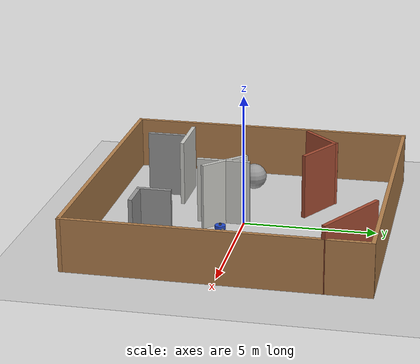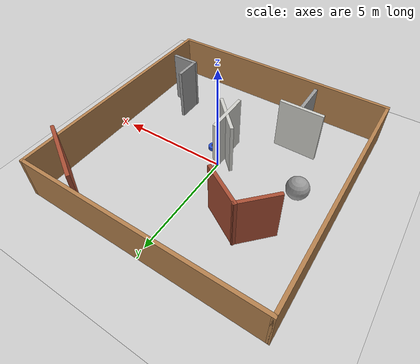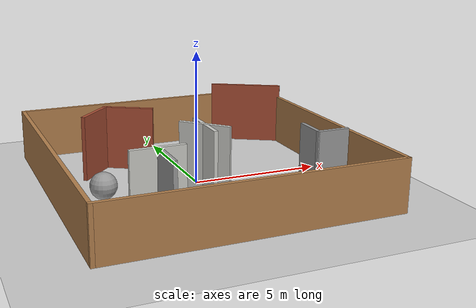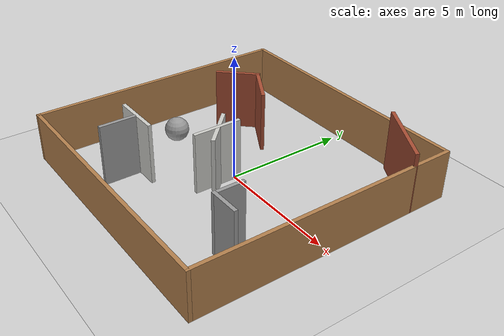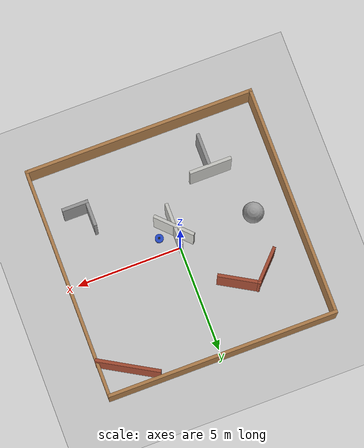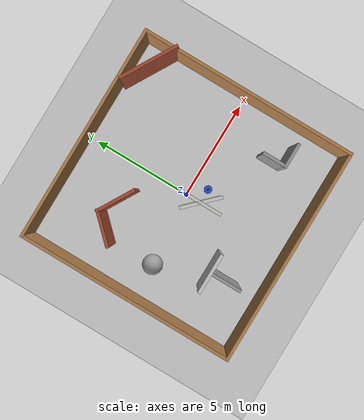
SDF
<sdf version="1.7">
 <world name="default">
  <light name="sun" type="directional">
   <pose>0 0 10 0 -0 0</pose>
   <diffuse>0.8 0.8 0.8 1</diffuse>
   <specular>0.1 0.1 0.1 1</specular>
   <attenuation>
    <range>1000</range>
    <constant>0.9</constant>
    <linear>0.01</linear>
    <quadratic>0.001</quadratic>
   </attenuation>
   <direction>-0.5 0.5 -1</direction>
   <spot><inner_angle>0</inner_angle><outer_angle>0</outer_angle><falloff>0</falloff></spot>
  </light>
  <model name="ground_plane">
   <static>1</static>
   <link name="link">
    <collision name="collision">
     <geometry><plane><normal>0 0 1</normal><size>100 100</size></plane></geometry>
     <surface><friction><ode><mu>100</mu><mu2>50</mu2></ode></friction></surface>
    </collision>
    <visual name="visual">
     <cast_shadows>0</cast_shadows>
     <geometry><plane><normal>0 0 1</normal><size>100 100</size></plane></geometry>
     <material>
      <script><uri>file://media/materials/scripts/gazebo.material</uri><name>Gazebo/Grey</name></script>
     </material>
    </visual>
   </link>
  </model>
  <gravity>0 0 -9.8</gravity>
  <magnetic_field>6e-06 2.3e-05 -4.2e-05</magnetic_field>
  <atmosphere type="adiabatic"/>
  <physics name="default_physics" default="0" type="ode">
   <max_step_size>0.001</max_step_size>
   <real_time_factor>1</real_time_factor>
   <real_time_update_rate>1000</real_time_update_rate>
  </physics>
  <scene><ambient>0.4 0.4 0.4 1</ambient><background>0.7 0.7 0.7 1</background><shadows>1</shadows></scene>
  <spherical_coordinates>
   <surface_model>EARTH_WGS84</surface_model>
   <latitude_deg>0</latitude_deg>
   <longitude_deg>0</longitude_deg>
   <elevation>0</elevation>
   <heading_deg>0</heading_deg>
  </spherical_coordinates>
  <model name="box">
   <link name="Wall_6">
    <pose>0 5.425 0 0 -0 0</pose>
    <visual name="Wall_6_Visual">
     <pose>0 0 1 0 -0 0</pose>
     <geometry><box><size>11 0.15 2</size></box></geometry>
     <material>
      <script><uri>file://media/materials/scripts/gazebo.material</uri><name>Gazebo/Wood</name></script>
      <ambient>1 1 1 1</ambient>
      <diffuse>1 1 1 1</diffuse>
      <specular>0.2 0.2 0.2 1</specular>
      <emissive>0 0 0 1</emissive>
      <shader type="pixel"/>
     </material>
     <meta><layer>0</layer></meta>
    </visual>
    <collision name="Wall_6_Collision">
     <pose>0 0 1 0 -0 0</pose>
     <geometry><box><size>11 0.15 2</size></box></geometry>
     <surface>
      <friction>
       <ode><mu>1</mu><mu2>1</mu2><fdir1>0 0 0</fdir1><slip1>0</slip1><slip2>0</slip2></ode>
       <torsional>
        <coefficient>1</coefficient>
        <patch_radius>0</patch_radius>
        <surface_radius>0</surface_radius>
        <use_patch_radius>1</use_patch_radius>
        <ode><slip>0</slip></ode>
       </torsional>
      </friction>
      <bounce><restitution_coefficient>0</restitution_coefficient><threshold>1e+06</threshold></bounce>
      <contact>
       <collide_without_contact>0</collide_without_contact>
       <collide_without_contact_bitmask>1</collide_without_contact_bitmask>
       <collide_bitmask>1</collide_bitmask>
       <ode>
        <soft_cfm>0</soft_cfm>
        <soft_erp>0.2</soft_erp>
        <kp>1e+13</kp>
        <kd>1</kd>
        <max_vel>0.01</max_vel>
        <min_depth>0</min_depth>
       </ode>
       <bullet>
        <split_impulse>1</split_impulse>
        <split_impulse_penetration_threshold>-0.01</split_impulse_penetration_threshold>
        <soft_cfm>0</soft_cfm>
        <soft_erp>0.2</soft_erp>
        <kp>1e+13</kp>
        <kd>1</kd>
       </bullet>
      </contact>
     </surface>
    </collision>
   </link>
   <link name="Wall_7">
    <pose>5.425 0 0 0 0 -1.5708</pose>
    <visual name="Wall_7_Visual">
     <pose>0 0 1 0 -0 0</pose>
     <geometry><box><size>11 0.15 2</size></box></geometry>
     <material>
      <script><uri>file://media/materials/scripts/gazebo.material</uri><name>Gazebo/Wood</name></script>
      <ambient>1 1 1 1</ambient>
      <diffuse>1 1 1 1</diffuse>
      <specular>0.2 0.2 0.2 1</specular>
      <emissive>0 0 0 1</emissive>
      <shader type="pixel"/>
     </material>
     <meta><layer>0</layer></meta>
    </visual>
    <collision name="Wall_7_Collision">
     <pose>0 0 1 0 -0 0</pose>
     <geometry><box><size>11 0.15 2</size></box></geometry>
     <surface>
      <friction>
       <ode><mu>1</mu><mu2>1</mu2><fdir1>0 0 0</fdir1><slip1>0</slip1><slip2>0</slip2></ode>
       <torsional>
        <coefficient>1</coefficient>
        <patch_radius>0</patch_radius>
        <surface_radius>0</surface_radius>
        <use_patch_radius>1</use_patch_radius>
        <ode><slip>0</slip></ode>
       </torsional>
      </friction>
      <bounce><restitution_coefficient>0</restitution_coefficient><threshold>1e+06</threshold></bounce>
      <contact>
       <collide_without_contact>0</collide_without_contact>
       <collide_without_contact_bitmask>1</collide_without_contact_bitmask>
       <collide_bitmask>1</collide_bitmask>
       <ode>
        <soft_cfm>0</soft_cfm>
        <soft_erp>0.2</soft_erp>
        <kp>1e+13</kp>
        <kd>1</kd>
        <max_vel>0.01</max_vel>
        <min_depth>0</min_depth>
       </ode>
       <bullet>
        <split_impulse>1</split_impulse>
        <split_impulse_penetration_threshold>-0.01</split_impulse_penetration_threshold>
        <soft_cfm>0</soft_cfm>
        <soft_erp>0.2</soft_erp>
        <kp>1e+13</kp>
        <kd>1</kd>
       </bullet>
      </contact>
     </surface>
    </collision>
   </link>
   <link name="Wall_8">
    <pose>0 -5.425 0 0 -0 3.14159</pose>
    <visual name="Wall_8_Visual">
     <pose>0 0 1 0 -0 0</pose>
     <geometry><box><size>11 0.15 2</size></box></geometry>
     <material>
      <script><uri>file://media/materials/scripts/gazebo.material</uri><name>Gazebo/Wood</name></script>
      <ambient>1 1 1 1</ambient>
      <diffuse>1 1 1 1</diffuse>
      <specular>0.2 0.2 0.2 1</specular>
      <emissive>0 0 0 1</emissive>
      <shader type="pixel"/>
     </material>
     <meta><layer>0</layer></meta>
    </visual>
    <collision name="Wall_8_Collision">
     <pose>0 0 1 0 -0 0</pose>
     <geometry><box><size>11 0.15 2</size></box></geometry>
     <surface>
      <friction>
       <ode><mu>1</mu><mu2>1</mu2><fdir1>0 0 0</fdir1><slip1>0</slip1><slip2>0</slip2></ode>
       <torsional>
        <coefficient>1</coefficient>
        <patch_radius>0</patch_radius>
        <surface_radius>0</surface_radius>
        <use_patch_radius>1</use_patch_radius>
        <ode><slip>0</slip></ode>
       </torsional>
      </friction>
      <bounce><restitution_coefficient>0</restitution_coefficient><threshold>1e+06</threshold></bounce>
      <contact>
       <collide_without_contact>0</collide_without_contact>
       <collide_without_contact_bitmask>1</collide_without_contact_bitmask>
       <collide_bitmask>1</collide_bitmask>
       <ode>
        <soft_cfm>0</soft_cfm>
        <soft_erp>0.2</soft_erp>
        <kp>1e+13</kp>
        <kd>1</kd>
        <max_vel>0.01</max_vel>
        <min_depth>0</min_depth>
       </ode>
       <bullet>
        <split_impulse>1</split_impulse>
        <split_impulse_penetration_threshold>-0.01</split_impulse_penetration_threshold>
        <soft_cfm>0</soft_cfm>
        <soft_erp>0.2</soft_erp>
        <kp>1e+13</kp>
        <kd>1</kd>
       </bullet>
      </contact>
     </surface>
    </collision>
   </link>
   <link name="Wall_9">
    <pose>-5.425 0 0 0 -0 1.5708</pose>
    <visual name="Wall_9_Visual">
     <pose>0 0 1 0 -0 0</pose>
     <geometry><box><size>11 0.15 2</size></box></geometry>
     <material>
      <script><uri>file://media/materials/scripts/gazebo.material</uri><name>Gazebo/Wood</name></script>
      <ambient>1 1 1 1</ambient>
      <diffuse>1 1 1 1</diffuse>
      <specular>0.2 0.2 0.2 1</specular>
      <emissive>0 0 0 1</emissive>
      <shader type="pixel"/>
     </material>
     <meta><layer>0</layer></meta>
    </visual>
    <collision name="Wall_9_Collision">
     <pose>0 0 1 0 -0 0</pose>
     <geometry><box><size>11 0.15 2</size></box></geometry>
     <surface>
      <friction>
       <ode><mu>1</mu><mu2>1</mu2><fdir1>0 0 0</fdir1><slip1>0</slip1><slip2>0</slip2></ode>
       <torsional>
        <coefficient>1</coefficient>
        <patch_radius>0</patch_radius>
        <surface_radius>0</surface_radius>
        <use_patch_radius>1</use_patch_radius>
        <ode><slip>0</slip></ode>
       </torsional>
      </friction>
      <bounce><restitution_coefficient>0</restitution_coefficient><threshold>1e+06</threshold></bounce>
      <contact>
       <collide_without_contact>0</collide_without_contact>
       <collide_without_contact_bitmask>1</collide_without_contact_bitmask>
       <collide_bitmask>1</collide_bitmask>
       <ode>
        <soft_cfm>0</soft_cfm>
        <soft_erp>0.2</soft_erp>
        <kp>1e+13</kp>
        <kd>1</kd>
        <max_vel>0.01</max_vel>
        <min_depth>0</min_depth>
       </ode>
       <bullet>
        <split_impulse>1</split_impulse>
        <split_impulse_penetration_threshold>-0.01</split_impulse_penetration_threshold>
        <soft_cfm>0</soft_cfm>
        <soft_erp>0.2</soft_erp>
        <kp>1e+13</kp>
        <kd>1</kd>
       </bullet>
      </contact>
     </surface>
    </collision>
   </link>
   <static>1</static>
   <pose>0.00056 -0.00012 0 0 -0 0</pose>
  </model>
  <model name="unit_sphere">
   <pose>-3.67776 -0.320638 0.5 0 -0 0</pose>
   <link name="link">
    <inertial>
     <mass>1</mass>
     <inertia><ixx>0.1</ixx><ixy>0</ixy><ixz>0</ixz><iyy>0.1</iyy><iyz>0</iyz><izz>0.1</izz></inertia>
    </inertial>
    <collision name="collision"><geometry><sphere><radius>0.5</radius></sphere></geometry></collision>
    <visual name="visual">
     <geometry><sphere><radius>0.5</radius></sphere></geometry>
     <material>
      <script><name>Gazebo/Grey</name><uri>file://media/materials/scripts/gazebo.material</uri></script>
     </material>
    </visual>
   </link>
  </model>
  <model name="p3dx">
   <link name="base_footprint">
    <inertial>
     <pose>0 0 0.110522 0 -0 0</pose>
     <mass>20.1</mass>
     <inertia><ixx>0.253764</ixx><ixy>0</ixy><ixz>0</ixz><iyy>0.253764</iyy><iyz>0</iyz><izz>0.41</izz></inertia>
    </inertial>
    <collision name="base_footprint_fixed_joint_lump__base_link_collision">
     <pose>0 0 0.11 0 -0 0</pose>
     <geometry><cylinder><length>0.16</length><radius>0.2</radius></cylinder></geometry>
    </collision>
    <collision name="base_footprint_fixed_joint_lump__laser_link_collision_1">
     <pose>0 0 0.215 0 -0 0</pose>
     <geometry><cylinder><length>0.06</length><radius>0.05</radius></cylinder></geometry>
    </collision>
    <visual name="base_footprint_visual"><geometry><box><size>0.001 0.001 0.001</size></box></geometry></visual>
    <visual name="base_footprint_fixed_joint_lump__base_link_visual_1">
     <pose>0 0 0.11 0 -0 0</pose>
     <geometry><cylinder><length>0.16</length><radius>0.2</radius></cylinder></geometry>
     <material>
      <script><name>Gazebo/Blue</name><uri>file://media/materials/scripts/gazebo.material</uri></script>
     </material>
    </visual>
    <visual name="base_footprint_fixed_joint_lump__laser_link_visual_2">
     <pose>0 0 0.215 0 -0 0</pose>
     <geometry><cylinder><length>0.05</length><radius>0.05</radius></cylinder></geometry>
     <material>
      <script><name>Gazebo/Black</name><uri>file://media/materials/scripts/gazebo.material</uri></script>
     </material>
    </visual>
    <sensor name="rplidar" type="ray">
     <visualize>0</visualize>
     <update_rate>5.5</update_rate>
     <ray>
      <scan>
       <horizontal>
        <samples>360</samples>
        <resolution>1</resolution>
        <min_angle>-3.14</min_angle>
        <max_angle>3.14</max_angle>
       </horizontal>
       <vertical><samples>1</samples><min_angle>0</min_angle><max_angle>0</max_angle></vertical>
      </scan>
      <range><min>0.1</min><max>10</max><resolution>0.01</resolution></range>
      <noise><type>gaussian</type><mean>0</mean><stddev>0.01</stddev></noise>
     </ray>
     <plugin name="gazebo_rplidar" filename="libgazebo_ros_laser.so">
      <topicName>/scan</topicName>
      <frameName>laser_link</frameName>
      <robotNamespace>/</robotNamespace>
     </plugin>
     <pose>0 0 0.215 0 -0 0</pose>
    </sensor>
   </link>
   <joint name="back_caster_joint" type="revolute">
    <pose relative_to="base_footprint">0.18 0 0.015 0 -0 0</pose>
    <parent>base_footprint</parent>
    <child>back_caster_link</child>
    <axis>
     <xyz>0 1 0</xyz>
     <limit><lower>-1e+16</lower><upper>1e+16</upper></limit>
     <dynamics><spring_reference>0</spring_reference><spring_stiffness>0</spring_stiffness></dynamics>
    </axis>
   </joint>
   <link name="back_caster_link">
    <pose relative_to="back_caster_joint">0 0 0 0 -0 0</pose>
    <inertial>
     <mass>0.5</mass>
     <inertia><ixx>4.5e-05</ixx><ixy>0</ixy><ixz>0</ixz><iyy>4.5e-05</iyy><iyz>0</iyz><izz>4.5e-05</izz></inertia>
    </inertial>
    <collision name="back_caster_link_collision">
     <geometry><sphere><radius>0.015</radius></sphere></geometry>
    </collision>
    <visual name="back_caster_link_visual">
     <geometry><sphere><radius>0.015</radius></sphere></geometry>
     <material>
      <script><name>Gazebo/Black</name><uri>file://media/materials/scripts/gazebo.material</uri></script>
     </material>
    </visual>
   </link>
   <joint name="front_caster_joint" type="revolute">
    <pose relative_to="base_footprint">-0.18 0 0.015 0 -0 0</pose>
    <parent>base_footprint</parent>
    <child>front_caster_link</child>
    <axis>
     <xyz>0 1 0</xyz>
     <limit><lower>-1e+16</lower><upper>1e+16</upper></limit>
     <dynamics><spring_reference>0</spring_reference><spring_stiffness>0</spring_stiffness></dynamics>
    </axis>
   </joint>
   <link name="front_caster_link">
    <pose relative_to="front_caster_joint">0 0 0 0 -0 0</pose>
    <inertial>
     <mass>0.5</mass>
     <inertia><ixx>4.5e-05</ixx><ixy>0</ixy><ixz>0</ixz><iyy>4.5e-05</iyy><iyz>0</iyz><izz>4.5e-05</izz></inertia>
    </inertial>
    <collision name="front_caster_link_collision">
     <geometry><sphere><radius>0.015</radius></sphere></geometry>
    </collision>
    <visual name="front_caster_link_visual">
     <geometry><sphere><radius>0.015</radius></sphere></geometry>
     <material>
      <script><name>Gazebo/Black</name><uri>file://media/materials/scripts/gazebo.material</uri></script>
     </material>
    </visual>
   </link>
   <joint name="left_wheel_joint" type="revolute">
    <pose relative_to="base_footprint">0 0.19 0.06 0 -0 0</pose>
    <parent>base_footprint</parent>
    <child>left_wheel_link</child>
    <axis>
     <xyz>0 1 0</xyz>
     <limit><lower>-1e+16</lower><upper>1e+16</upper></limit>
     <dynamics><spring_reference>0</spring_reference><spring_stiffness>0</spring_stiffness></dynamics>
    </axis>
   </joint>
   <link name="left_wheel_link">
    <pose relative_to="left_wheel_joint">0 0 0 0 -0 0</pose>
    <inertial>
     <mass>2</mass>
     <inertia>
      <ixx>0.00190417</ixx>
      <ixy>0</ixy>
      <ixz>0</ixz>
      <iyy>0.00190417</iyy>
      <iyz>0</iyz>
      <izz>0.0036</izz>
     </inertia>
    </inertial>
    <collision name="left_wheel_link_collision">
     <pose>0 0 0 1.5708 -0 0</pose>
     <geometry><cylinder><length>0.025</length><radius>0.06</radius></cylinder></geometry>
    </collision>
    <visual name="left_wheel_link_visual">
     <pose>0 0 0 1.5708 -0 0</pose>
     <geometry><cylinder><length>0.025</length><radius>0.06</radius></cylinder></geometry>
     <material>
      <script><name>Gazebo/Gray</name><uri>file://media/materials/scripts/gazebo.material</uri></script>
     </material>
    </visual>
   </link>
   <joint name="right_wheel_joint" type="revolute">
    <pose relative_to="base_footprint">0 -0.19 0.06 0 -0 0</pose>
    <parent>base_footprint</parent>
    <child>right_wheel_link</child>
    <axis>
     <xyz>0 1 0</xyz>
     <limit><lower>-1e+16</lower><upper>1e+16</upper></limit>
     <dynamics><spring_reference>0</spring_reference><spring_stiffness>0</spring_stiffness></dynamics>
    </axis>
   </joint>
   <link name="right_wheel_link">
    <pose relative_to="right_wheel_joint">0 0 0 0 -0 0</pose>
    <inertial>
     <mass>2</mass>
     <inertia>
      <ixx>0.00190417</ixx>
      <ixy>0</ixy>
      <ixz>0</ixz>
      <iyy>0.00190417</iyy>
      <iyz>0</iyz>
      <izz>0.0036</izz>
     </inertia>
    </inertial>
    <collision name="right_wheel_link_collision">
     <pose>0 0 0 1.5708 -0 0</pose>
     <geometry><cylinder><length>0.025</length><radius>0.06</radius></cylinder></geometry>
    </collision>
    <visual name="right_wheel_link_visual">
     <pose>0 0 0 1.5708 -0 0</pose>
     <geometry><cylinder><length>0.025</length><radius>0.06</radius></cylinder></geometry>
     <material>
      <script><name>Gazebo/Gray</name><uri>file://media/materials/scripts/gazebo.material</uri></script>
     </material>
    </visual>
   </link>
   <static>0</static>
   <plugin name="differential_drive_controller" filename="libgazebo_ros_diff_drive.so">
    <rosDebugLevel>Debug</rosDebugLevel>
    <publishWheelTF>0</publishWheelTF>
    <robotNamespace>/</robotNamespace>
    <publishTf>1</publishTf>
    <publishWheelJointState>0</publishWheelJointState>
    <alwaysOn>1</alwaysOn>
    <updateRate>100.0</updateRate>
    <legacyMode>1</legacyMode>
    <leftJoint>left_wheel_joint</leftJoint>
    <rightJoint>right_wheel_joint</rightJoint>
    <wheelSeparation>0.38</wheelSeparation>
    <wheelDiameter>0.12</wheelDiameter>
    <broadcastTF>1</broadcastTF>
    <wheelTorque>30</wheelTorque>
    <wheelAcceleration>1.8</wheelAcceleration>
    <commandTopic>cmd_vel</commandTopic>
    <odometryFrame>odom</odometryFrame>
    <odometryTopic>odom</odometryTopic>
    <robotBaseFrame>base_footprint</robotBaseFrame>
   </plugin>
   <pose>0.761274 -0.755294 0 0 -0 2.24289</pose>
  </model>
  <model name="obstacle_walls">
   <link name="Wall_0">
    <pose>-3.18095 -3.29025 0 0 -0 3.14159</pose>
    <visual name="Wall_0_Visual">
     <pose>0 0 1.25 0 -0 0</pose>
     <geometry><box><size>2 0.15 2.5</size></box></geometry>
     <material>
      <script><uri>file://media/materials/scripts/gazebo.material</uri><name>Gazebo/CeilingTiled</name></script>
      <ambient>1 1 1 1</ambient>
      <shader type="pixel"/>
     </material>
     <meta><layer>0</layer></meta>
    </visual>
    <collision name="Wall_0_Collision">
     <pose>0 0 1.25 0 -0 0</pose>
     <geometry><box><size>2 0.15 2.5</size></box></geometry>
     <surface>
      <friction>
       <ode><mu>1</mu><mu2>1</mu2><fdir1>0 0 0</fdir1><slip1>0</slip1><slip2>0</slip2></ode>
       <torsional>
        <coefficient>1</coefficient>
        <patch_radius>0</patch_radius>
        <surface_radius>0</surface_radius>
        <use_patch_radius>1</use_patch_radius>
        <ode><slip>0</slip></ode>
       </torsional>
      </friction>
      <bounce><restitution_coefficient>0</restitution_coefficient><threshold>1e+06</threshold></bounce>
      <contact>
       <collide_without_contact>0</collide_without_contact>
       <collide_without_contact_bitmask>1</collide_without_contact_bitmask>
       <collide_bitmask>1</collide_bitmask>
       <ode>
        <soft_cfm>0</soft_cfm>
        <soft_erp>0.2</soft_erp>
        <kp>1e+13</kp>
        <kd>1</kd>
        <max_vel>0.01</max_vel>
        <min_depth>0</min_depth>
       </ode>
       <bullet>
        <split_impulse>1</split_impulse>
        <split_impulse_penetration_threshold>-0.01</split_impulse_penetration_threshold>
        <soft_cfm>0</soft_cfm>
        <soft_erp>0.2</soft_erp>
        <kp>1e+13</kp>
        <kd>1</kd>
       </bullet>
      </contact>
     </surface>
    </collision>
   </link>
   <link name="Wall_10">
    <pose>-3.15015 -4.09826 0 0 -0 1.5708</pose>
    <visual name="Wall_10_Visual">
     <pose>0 0 1.25 0 -0 0</pose>
     <geometry><box><size>1.5 0.15 2.5</size></box></geometry>
     <material>
      <script><uri>file://media/materials/scripts/gazebo.material</uri><name>Gazebo/Grey</name></script>
      <ambient>1 1 1 1</ambient>
      <shader type="pixel"/>
     </material>
     <meta><layer>0</layer></meta>
    </visual>
    <collision name="Wall_10_Collision">
     <pose>0 0 1.25 0 -0 0</pose>
     <geometry><box><size>1.5 0.15 2.5</size></box></geometry>
     <surface>
      <friction>
       <ode><mu>1</mu><mu2>1</mu2><fdir1>0 0 0</fdir1><slip1>0</slip1><slip2>0</slip2></ode>
       <torsional>
        <coefficient>1</coefficient>
        <patch_radius>0</patch_radius>
        <surface_radius>0</surface_radius>
        <use_patch_radius>1</use_patch_radius>
        <ode><slip>0</slip></ode>
       </torsional>
      </friction>
      <bounce><restitution_coefficient>0</restitution_coefficient><threshold>1e+06</threshold></bounce>
      <contact>
       <collide_without_contact>0</collide_without_contact>
       <collide_without_contact_bitmask>1</collide_without_contact_bitmask>
       <collide_bitmask>1</collide_bitmask>
       <ode>
        <soft_cfm>0</soft_cfm>
        <soft_erp>0.2</soft_erp>
        <kp>1e+13</kp>
        <kd>1</kd>
        <max_vel>0.01</max_vel>
        <min_depth>0</min_depth>
       </ode>
       <bullet>
        <split_impulse>1</split_impulse>
        <split_impulse_penetration_threshold>-0.01</split_impulse_penetration_threshold>
        <soft_cfm>0</soft_cfm>
        <soft_erp>0.2</soft_erp>
        <kp>1e+13</kp>
        <kd>1</kd>
       </bullet>
      </contact>
     </surface>
    </collision>
   </link>
   <link name="Wall_12">
    <pose>-0.682653 -1.29241 0 0 -0 2.35619</pose>
    <visual name="Wall_12_Visual">
     <pose>0 0 1.25 0 -0 0</pose>
     <geometry><box><size>2 0.15 2.5</size></box></geometry>
     <material>
      <script><uri>file://media/materials/scripts/gazebo.material</uri><name>Gazebo/CeilingTiled</name></script>
      <ambient>1 1 1 1</ambient>
      <shader type="pixel"/>
     </material>
     <meta><layer>0</layer></meta>
    </visual>
    <collision name="Wall_12_Collision">
     <pose>0 0 1.25 0 -0 0</pose>
     <geometry><box><size>2 0.15 2.5</size></box></geometry>
     <surface>
      <friction>
       <ode><mu>1</mu><mu2>1</mu2><fdir1>0 0 0</fdir1><slip1>0</slip1><slip2>0</slip2></ode>
       <torsional>
        <coefficient>1</coefficient>
        <patch_radius>0</patch_radius>
        <surface_radius>0</surface_radius>
        <use_patch_radius>1</use_patch_radius>
        <ode><slip>0</slip></ode>
       </torsional>
      </friction>
      <bounce><restitution_coefficient>0</restitution_coefficient><threshold>1e+06</threshold></bounce>
      <contact>
       <collide_without_contact>0</collide_without_contact>
       <collide_without_contact_bitmask>1</collide_without_contact_bitmask>
       <collide_bitmask>1</collide_bitmask>
       <ode>
        <soft_cfm>0</soft_cfm>
        <soft_erp>0.2</soft_erp>
        <kp>1e+13</kp>
        <kd>1</kd>
        <max_vel>0.01</max_vel>
        <min_depth>0</min_depth>
       </ode>
       <bullet>
        <split_impulse>1</split_impulse>
        <split_impulse_penetration_threshold>-0.01</split_impulse_penetration_threshold>
        <soft_cfm>0</soft_cfm>
        <soft_erp>0.2</soft_erp>
        <kp>1e+13</kp>
        <kd>1</kd>
       </bullet>
      </contact>
     </surface>
    </collision>
   </link>
   <link name="Wall_14">
    <pose>-0.698145 -1.34041 0 0 0 -1.5708</pose>
    <visual name="Wall_14_Visual">
     <pose>0 0 1.25 0 -0 0</pose>
     <geometry><box><size>2 0.15 2.5</size></box></geometry>
     <material>
      <script><uri>file://media/materials/scripts/gazebo.material</uri><name>Gazebo/CeilingTiled</name></script>
      <ambient>1 1 1 1</ambient>
      <shader type="pixel"/>
     </material>
     <meta><layer>0</layer></meta>
    </visual>
    <collision name="Wall_14_Collision">
     <pose>0 0 1.25 0 -0 0</pose>
     <geometry><box><size>2 0.15 2.5</size></box></geometry>
     <surface>
      <friction>
       <ode><mu>1</mu><mu2>1</mu2><fdir1>0 0 0</fdir1><slip1>0</slip1><slip2>0</slip2></ode>
       <torsional>
        <coefficient>1</coefficient>
        <patch_radius>0</patch_radius>
        <surface_radius>0</surface_radius>
        <use_patch_radius>1</use_patch_radius>
        <ode><slip>0</slip></ode>
       </torsional>
      </friction>
      <bounce><restitution_coefficient>0</restitution_coefficient><threshold>1e+06</threshold></bounce>
      <contact>
       <collide_without_contact>0</collide_without_contact>
       <collide_without_contact_bitmask>1</collide_without_contact_bitmask>
       <collide_bitmask>1</collide_bitmask>
       <ode>
        <soft_cfm>0</soft_cfm>
        <soft_erp>0.2</soft_erp>
        <kp>1e+13</kp>
        <kd>1</kd>
        <max_vel>0.01</max_vel>
        <min_depth>0</min_depth>
       </ode>
       <bullet>
        <split_impulse>1</split_impulse>
        <split_impulse_penetration_threshold>-0.01</split_impulse_penetration_threshold>
        <soft_cfm>0</soft_cfm>
        <soft_erp>0.2</soft_erp>
        <kp>1e+13</kp>
        <kd>1</kd>
       </bullet>
      </contact>
     </surface>
    </collision>
   </link>
   <link name="Wall_18">
    <pose>-3.93243 1.87404 0 0 -0 0.807642</pose>
    <visual name="Wall_18_Visual">
     <pose>0 0 1.25 0 -0 0</pose>
     <geometry><box><size>1.82289 0.15 2.5</size></box></geometry>
     <material>
      <script><uri>file://media/materials/scripts/gazebo.material</uri><name>Gazebo/Bricks</name></script>
      <ambient>1 1 1 1</ambient>
      <shader type="pixel"/>
     </material>
     <meta><layer>0</layer></meta>
    </visual>
    <collision name="Wall_18_Collision">
     <pose>0 0 1.25 0 -0 0</pose>
     <geometry><box><size>1.82289 0.15 2.5</size></box></geometry>
     <surface>
      <friction>
       <ode><mu>1</mu><mu2>1</mu2><fdir1>0 0 0</fdir1><slip1>0</slip1><slip2>0</slip2></ode>
       <torsional>
        <coefficient>1</coefficient>
        <patch_radius>0</patch_radius>
        <surface_radius>0</surface_radius>
        <use_patch_radius>1</use_patch_radius>
        <ode><slip>0</slip></ode>
       </torsional>
      </friction>
      <bounce><restitution_coefficient>0</restitution_coefficient><threshold>1e+06</threshold></bounce>
      <contact>
       <collide_without_contact>0</collide_without_contact>
       <collide_without_contact_bitmask>1</collide_without_contact_bitmask>
       <collide_bitmask>1</collide_bitmask>
       <ode>
        <soft_cfm>0</soft_cfm>
        <soft_erp>0.2</soft_erp>
        <kp>1e+13</kp>
        <kd>1</kd>
        <max_vel>0.01</max_vel>
        <min_depth>0</min_depth>
       </ode>
       <bullet>
        <split_impulse>1</split_impulse>
        <split_impulse_penetration_threshold>-0.01</split_impulse_penetration_threshold>
        <soft_cfm>0</soft_cfm>
        <soft_erp>0.2</soft_erp>
        <kp>1e+13</kp>
        <kd>1</kd>
       </bullet>
      </contact>
     </surface>
    </collision>
   </link>
   <link name="Wall_19">
    <pose>-2.57633 2.016 0 0 0 -0.523599</pose>
    <visual name="Wall_19_Visual">
     <pose>0 0 1.25 0 -0 0</pose>
     <geometry><box><size>2 0.15 2.5</size></box></geometry>
     <material>
      <script><uri>file://media/materials/scripts/gazebo.material</uri><name>Gazebo/Bricks</name></script>
      <ambient>1 1 1 1</ambient>
      <shader type="pixel"/>
     </material>
     <meta><layer>0</layer></meta>
    </visual>
    <collision name="Wall_19_Collision">
     <pose>0 0 1.25 0 -0 0</pose>
     <geometry><box><size>2 0.15 2.5</size></box></geometry>
     <surface>
      <friction>
       <ode><mu>1</mu><mu2>1</mu2><fdir1>0 0 0</fdir1><slip1>0</slip1><slip2>0</slip2></ode>
       <torsional>
        <coefficient>1</coefficient>
        <patch_radius>0</patch_radius>
        <surface_radius>0</surface_radius>
        <use_patch_radius>1</use_patch_radius>
        <ode><slip>0</slip></ode>
       </torsional>
      </friction>
      <bounce><restitution_coefficient>0</restitution_coefficient><threshold>1e+06</threshold></bounce>
      <contact>
       <collide_without_contact>0</collide_without_contact>
       <collide_without_contact_bitmask>1</collide_without_contact_bitmask>
       <collide_bitmask>1</collide_bitmask>
       <ode>
        <soft_cfm>0</soft_cfm>
        <soft_erp>0.2</soft_erp>
        <kp>1e+13</kp>
        <kd>1</kd>
        <max_vel>0.01</max_vel>
        <min_depth>0</min_depth>
       </ode>
       <bullet>
        <split_impulse>1</split_impulse>
        <split_impulse_penetration_threshold>-0.01</split_impulse_penetration_threshold>
        <soft_cfm>0</soft_cfm>
        <soft_erp>0.2</soft_erp>
        <kp>1e+13</kp>
        <kd>1</kd>
       </bullet>
      </contact>
     </surface>
    </collision>
   </link>
   <link name="Wall_26">
    <pose>3.18511 -3.68239 0 0 -0 3.14159</pose>
    <visual name="Wall_26_Visual">
     <pose>0 0 1.25 0 -0 0</pose>
     <geometry><box><size>1.25 0.15 2.5</size></box></geometry>
     <material>
      <script><uri>file://media/materials/scripts/gazebo.material</uri><name>Gazebo/Grey</name></script>
      <ambient>1 1 1 1</ambient>
      <shader type="pixel"/>
     </material>
     <meta><layer>0</layer></meta>
    </visual>
    <collision name="Wall_26_Collision">
     <pose>0 0 1.25 0 -0 0</pose>
     <geometry><box><size>1.25 0.15 2.5</size></box></geometry>
     <surface>
      <friction>
       <ode><mu>1</mu><mu2>1</mu2><fdir1>0 0 0</fdir1><slip1>0</slip1><slip2>0</slip2></ode>
       <torsional>
        <coefficient>1</coefficient>
        <patch_radius>0</patch_radius>
        <surface_radius>0</surface_radius>
        <use_patch_radius>1</use_patch_radius>
        <ode><slip>0</slip></ode>
       </torsional>
      </friction>
      <bounce><restitution_coefficient>0</restitution_coefficient><threshold>1e+06</threshold></bounce>
      <contact>
       <collide_without_contact>0</collide_without_contact>
       <collide_without_contact_bitmask>1</collide_without_contact_bitmask>
       <collide_bitmask>1</collide_bitmask>
       <ode>
        <soft_cfm>0</soft_cfm>
        <soft_erp>0.2</soft_erp>
        <kp>1e+13</kp>
        <kd>1</kd>
        <max_vel>0.01</max_vel>
        <min_depth>0</min_depth>
       </ode>
       <bullet>
        <split_impulse>1</split_impulse>
        <split_impulse_penetration_threshold>-0.01</split_impulse_penetration_threshold>
        <soft_cfm>0</soft_cfm>
        <soft_erp>0.2</soft_erp>
        <kp>1e+13</kp>
        <kd>1</kd>
       </bullet>
      </contact>
     </surface>
    </collision>
   </link>
   <link name="Wall_27">
    <pose>2.63511 -3.13239 0 0 -0 1.5708</pose>
    <visual name="Wall_27_Visual">
     <pose>0 0 1.25 0 -0 0</pose>
     <geometry><box><size>1.25 0.15 2.5</size></box></geometry>
     <material>
      <script><uri>file://media/materials/scripts/gazebo.material</uri><name>Gazebo/Grey</name></script>
      <ambient>1 1 1 1</ambient>
      <shader type="pixel"/>
     </material>
     <meta><layer>0</layer></meta>
    </visual>
    <collision name="Wall_27_Collision">
     <pose>0 0 1.25 0 -0 0</pose>
     <geometry><box><size>1.25 0.15 2.5</size></box></geometry>
     <surface>
      <friction>
       <ode><mu>1</mu><mu2>1</mu2><fdir1>0 0 0</fdir1><slip1>0</slip1><slip2>0</slip2></ode>
       <torsional>
        <coefficient>1</coefficient>
        <patch_radius>0</patch_radius>
        <surface_radius>0</surface_radius>
        <use_patch_radius>1</use_patch_radius>
        <ode><slip>0</slip></ode>
       </torsional>
      </friction>
      <bounce><restitution_coefficient>0</restitution_coefficient><threshold>1e+06</threshold></bounce>
      <contact>
       <collide_without_contact>0</collide_without_contact>
       <collide_without_contact_bitmask>1</collide_without_contact_bitmask>
       <collide_bitmask>1</collide_bitmask>
       <ode>
        <soft_cfm>0</soft_cfm>
        <soft_erp>0.2</soft_erp>
        <kp>1e+13</kp>
        <kd>1</kd>
        <max_vel>0.01</max_vel>
        <min_depth>0</min_depth>
       </ode>
       <bullet>
        <split_impulse>1</split_impulse>
        <split_impulse_penetration_threshold>-0.01</split_impulse_penetration_threshold>
        <soft_cfm>0</soft_cfm>
        <soft_erp>0.2</soft_erp>
        <kp>1e+13</kp>
        <kd>1</kd>
       </bullet>
      </contact>
     </surface>
    </collision>
   </link>
   <link name="Wall_3">
    <pose>3.45378 3.93471 0 0 -0 2.61799</pose>
    <inertial>
     <mass>1</mass>
     <inertia><ixx>1</ixx><ixy>0</ixy><ixz>0</ixz><iyy>1</iyy><iyz>0</iyz><izz>1</izz></inertia>
    </inertial>
    <visual name="Wall_3_Visual">
     <pose>0 0 1.25 0 -0 0</pose>
     <geometry><box><size>3 0.15 2.5</size></box></geometry>
     <material>
      <script><uri>file://media/materials/scripts/gazebo.material</uri><name>Gazebo/Bricks</name></script>
      <ambient>1 1 1 1</ambient>
      <shader type="pixel"><normal_map>__default__</normal_map></shader>
      <diffuse>1 1 1 1</diffuse>
      <specular>0.2 0.2 0.2 1</specular>
      <emissive>0 0 0 1</emissive>
     </material>
     <meta><layer>0</layer></meta>
    </visual>
    <collision name="Wall_3_Collision">
     <pose>0 0 1.25 0 -0 0</pose>
     <geometry><box><size>3 0.15 2.5</size></box></geometry>
     <surface>
      <friction>
       <ode><mu>1</mu><mu2>1</mu2><fdir1>0 0 0</fdir1><slip1>0</slip1><slip2>0</slip2></ode>
       <torsional>
        <coefficient>1</coefficient>
        <patch_radius>0</patch_radius>
        <surface_radius>0</surface_radius>
        <use_patch_radius>1</use_patch_radius>
        <ode><slip>0</slip></ode>
       </torsional>
      </friction>
      <bounce><restitution_coefficient>0</restitution_coefficient><threshold>1e+06</threshold></bounce>
      <contact>
       <collide_without_contact>0</collide_without_contact>
       <collide_without_contact_bitmask>1</collide_without_contact_bitmask>
       <collide_bitmask>1</collide_bitmask>
       <ode>
        <soft_cfm>0</soft_cfm>
        <soft_erp>0.2</soft_erp>
        <kp>1e+13</kp>
        <kd>1</kd>
        <max_vel>0.01</max_vel>
        <min_depth>0</min_depth>
       </ode>
       <bullet>
        <split_impulse>1</split_impulse>
        <split_impulse_penetration_threshold>-0.01</split_impulse_penetration_threshold>
        <soft_cfm>0</soft_cfm>
        <soft_erp>0.2</soft_erp>
        <kp>1e+13</kp>
        <kd>1</kd>
       </bullet>
      </contact>
     </surface>
    </collision>
   </link>
   <static>1</static>
   <pose>0.726069 0.566638 0 0 -0 0</pose>
  </model>
 </world>
</sdf>
